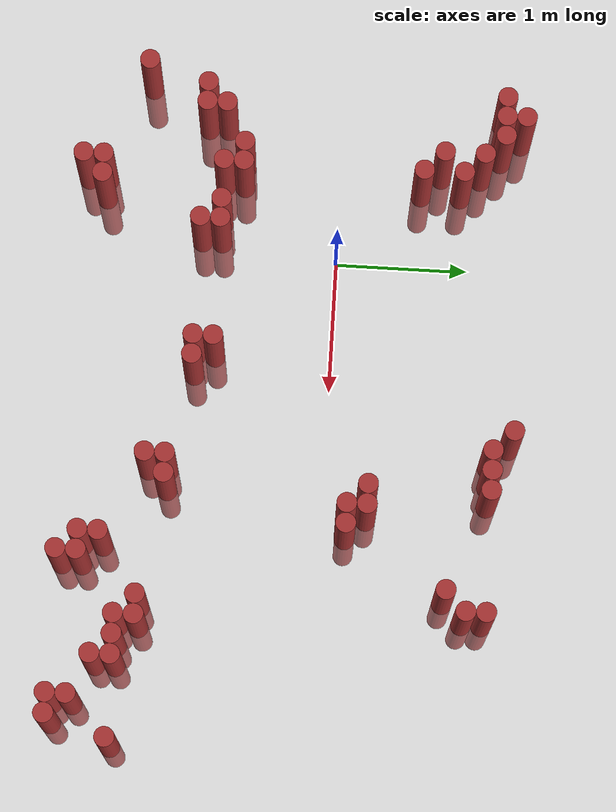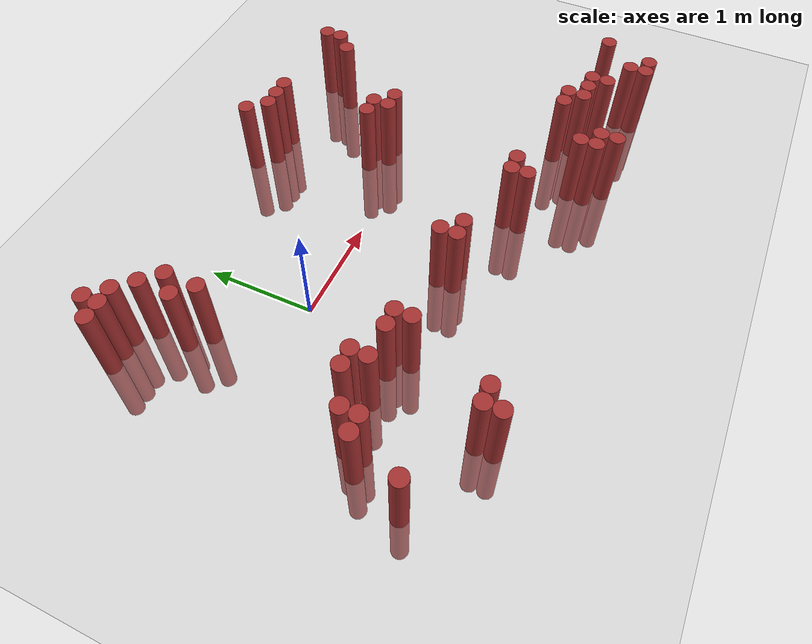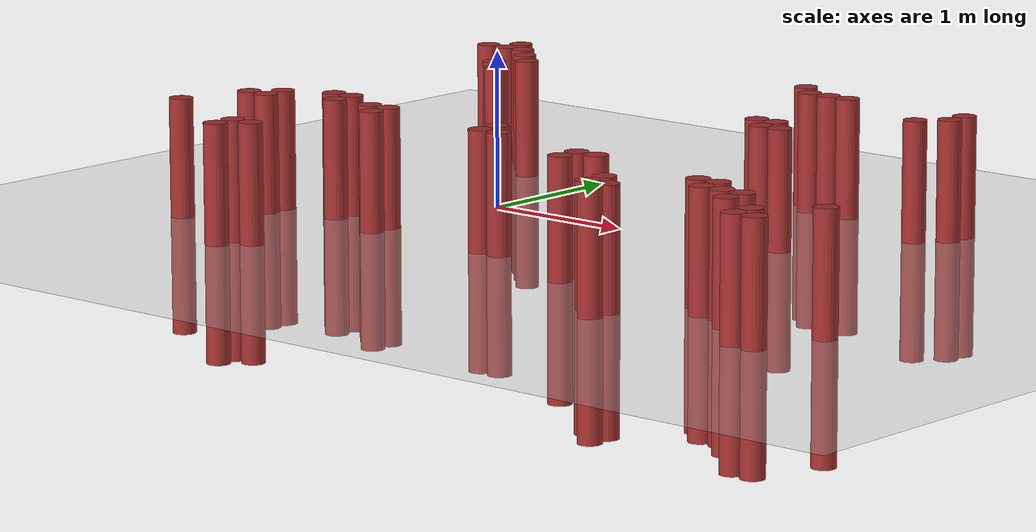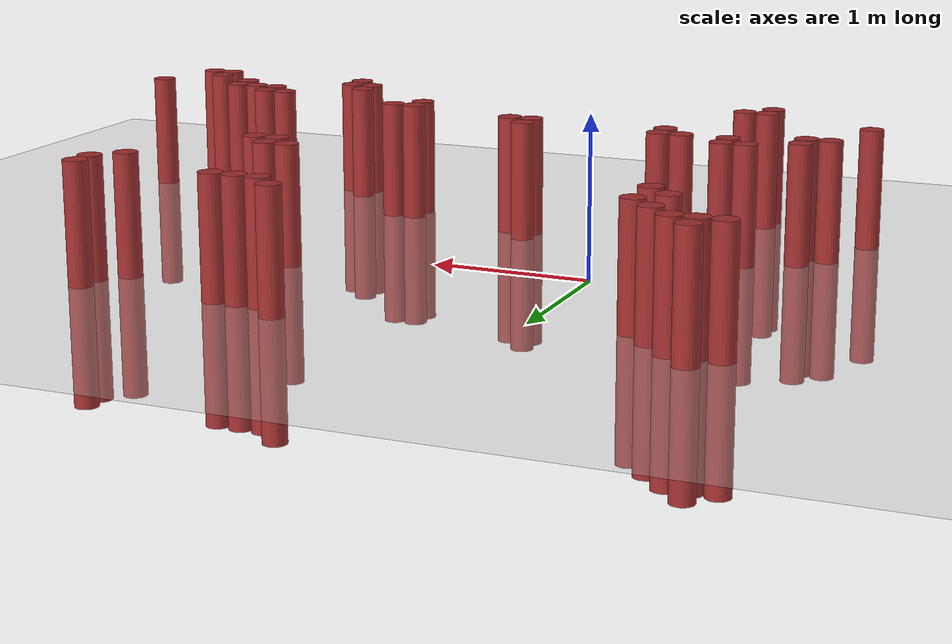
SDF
<sdf version="1.6">
 <world name="default">
  <model name="ground_plane">
   <static>1</static>
   <link name="link">
    <collision name="collision">
     <geometry><plane><normal>0 0 1</normal><size>100 100</size></plane></geometry>
     <surface><friction><ode><mu>100</mu><mu2>50</mu2></ode></friction></surface>
    </collision>
    <visual name="visual">
     <cast_shadows>0</cast_shadows>
     <geometry><plane><normal>0 0 1</normal><size>100 100</size></plane></geometry>
     <material>
      <script><uri>file://media/materials/scripts/gazebo.material</uri><name>Gazebo/Grey</name></script>
     </material>
    </visual>
   </link>
  </model>
  <model name="unit_cylinder_293">
   <static>1</static>
   <pose>-1.325000 -1.475000 0.000000 0.000000 0.000000 0.000000</pose>
   <link name="link">
    <inertial>
     <mass>1</mass>
     <inertia><ixx>0.145833</ixx><ixy>0</ixy><ixz>0</ixz><iyy>0.145833</iyy><iyz>0</iyz><izz>0.125</izz></inertia>
    </inertial>
    <collision name="collision">
     <geometry><cylinder><radius>0.075000</radius><length>1.5</length></cylinder></geometry>
    </collision>
    <visual name="visual">
     <geometry><cylinder><radius>0.075000</radius><length>1.5</length></cylinder></geometry>
     <material>
      <ambient>0.648000 0.192000 0.192000 1</ambient>
      <diffuse>0.648000 0.192000 0.192000 1</diffuse>
     </material>
     <material>
      <script><name>Gazebo/Grey</name><uri>file://media/materials/scripts/gazebo.material</uri></script>
     </material>
    </visual>
   </link>
  </model>
  <model name="unit_cylinder_295">
   <static>1</static>
   <pose>-1.175000 -1.025000 0.000000 0.000000 0.000000 0.000000</pose>
   <link name="link">
    <inertial>
     <mass>1</mass>
     <inertia><ixx>0.145833</ixx><ixy>0</ixy><ixz>0</ixz><iyy>0.145833</iyy><iyz>0</iyz><izz>0.125</izz></inertia>
    </inertial>
    <collision name="collision">
     <geometry><cylinder><radius>0.075000</radius><length>1.5</length></cylinder></geometry>
    </collision>
    <visual name="visual">
     <geometry><cylinder><radius>0.075000</radius><length>1.5</length></cylinder></geometry>
     <material>
      <ambient>0.648000 0.192000 0.192000 1</ambient>
      <diffuse>0.648000 0.192000 0.192000 1</diffuse>
     </material>
     <material>
      <script><name>Gazebo/Grey</name><uri>file://media/materials/scripts/gazebo.material</uri></script>
     </material>
    </visual>
   </link>
  </model>
  <model name="unit_cylinder_296">
   <static>1</static>
   <pose>-1.175000 1.225000 0.000000 0.000000 0.000000 0.000000</pose>
   <link name="link">
    <inertial>
     <mass>1</mass>
     <inertia><ixx>0.145833</ixx><ixy>0</ixy><ixz>0</ixz><iyy>0.145833</iyy><iyz>0</iyz><izz>0.125</izz></inertia>
    </inertial>
    <collision name="collision">
     <geometry><cylinder><radius>0.075000</radius><length>1.5</length></cylinder></geometry>
    </collision>
    <visual name="visual">
     <geometry><cylinder><radius>0.075000</radius><length>1.5</length></cylinder></geometry>
     <material>
      <ambient>0.648000 0.192000 0.192000 1</ambient>
      <diffuse>0.648000 0.192000 0.192000 1</diffuse>
     </material>
     <material>
      <script><name>Gazebo/Grey</name><uri>file://media/materials/scripts/gazebo.material</uri></script>
     </material>
    </visual>
   </link>
  </model>
  <model name="unit_cylinder_297">
   <static>1</static>
   <pose>-1.025000 -1.025000 0.000000 0.000000 0.000000 0.000000</pose>
   <link name="link">
    <inertial>
     <mass>1</mass>
     <inertia><ixx>0.145833</ixx><ixy>0</ixy><ixz>0</ixz><iyy>0.145833</iyy><iyz>0</iyz><izz>0.125</izz></inertia>
    </inertial>
    <collision name="collision">
     <geometry><cylinder><radius>0.075000</radius><length>1.5</length></cylinder></geometry>
    </collision>
    <visual name="visual">
     <geometry><cylinder><radius>0.075000</radius><length>1.5</length></cylinder></geometry>
     <material>
      <ambient>0.648000 0.192000 0.192000 1</ambient>
      <diffuse>0.648000 0.192000 0.192000 1</diffuse>
     </material>
     <material>
      <script><name>Gazebo/Grey</name><uri>file://media/materials/scripts/gazebo.material</uri></script>
     </material>
    </visual>
   </link>
  </model>
  <model name="unit_cylinder_298">
   <static>1</static>
   <pose>-1.025000 -0.875000 0.000000 0.000000 0.000000 0.000000</pose>
   <link name="link">
    <inertial>
     <mass>1</mass>
     <inertia><ixx>0.145833</ixx><ixy>0</ixy><ixz>0</ixz><iyy>0.145833</iyy><iyz>0</iyz><izz>0.125</izz></inertia>
    </inertial>
    <collision name="collision">
     <geometry><cylinder><radius>0.075000</radius><length>1.5</length></cylinder></geometry>
    </collision>
    <visual name="visual">
     <geometry><cylinder><radius>0.075000</radius><length>1.5</length></cylinder></geometry>
     <material>
      <ambient>0.648000 0.192000 0.192000 1</ambient>
      <diffuse>0.648000 0.192000 0.192000 1</diffuse>
     </material>
     <material>
      <script><name>Gazebo/Grey</name><uri>file://media/materials/scripts/gazebo.material</uri></script>
     </material>
    </visual>
   </link>
  </model>
  <model name="unit_cylinder_299">
   <static>1</static>
   <pose>-1.025000 1.225000 0.000000 0.000000 0.000000 0.000000</pose>
   <link name="link">
    <inertial>
     <mass>1</mass>
     <inertia><ixx>0.145833</ixx><ixy>0</ixy><ixz>0</ixz><iyy>0.145833</iyy><iyz>0</iyz><izz>0.125</izz></inertia>
    </inertial>
    <collision name="collision">
     <geometry><cylinder><radius>0.075000</radius><length>1.5</length></cylinder></geometry>
    </collision>
    <visual name="visual">
     <geometry><cylinder><radius>0.075000</radius><length>1.5</length></cylinder></geometry>
     <material>
      <ambient>0.648000 0.192000 0.192000 1</ambient>
      <diffuse>0.648000 0.192000 0.192000 1</diffuse>
     </material>
     <material>
      <script><name>Gazebo/Grey</name><uri>file://media/materials/scripts/gazebo.material</uri></script>
     </material>
    </visual>
   </link>
  </model>
  <model name="unit_cylinder_300">
   <static>1</static>
   <pose>-1.025000 1.375000 0.000000 0.000000 0.000000 0.000000</pose>
   <link name="link">
    <inertial>
     <mass>1</mass>
     <inertia><ixx>0.145833</ixx><ixy>0</ixy><ixz>0</ixz><iyy>0.145833</iyy><iyz>0</iyz><izz>0.125</izz></inertia>
    </inertial>
    <collision name="collision">
     <geometry><cylinder><radius>0.075000</radius><length>1.5</length></cylinder></geometry>
    </collision>
    <visual name="visual">
     <geometry><cylinder><radius>0.075000</radius><length>1.5</length></cylinder></geometry>
     <material>
      <ambient>0.648000 0.192000 0.192000 1</ambient>
      <diffuse>0.648000 0.192000 0.192000 1</diffuse>
     </material>
     <material>
      <script><name>Gazebo/Grey</name><uri>file://media/materials/scripts/gazebo.material</uri></script>
     </material>
    </visual>
   </link>
  </model>
  <model name="unit_cylinder_301">
   <static>1</static>
   <pose>-0.875000 1.225000 0.000000 0.000000 0.000000 0.000000</pose>
   <link name="link">
    <inertial>
     <mass>1</mass>
     <inertia><ixx>0.145833</ixx><ixy>0</ixy><ixz>0</ixz><iyy>0.145833</iyy><iyz>0</iyz><izz>0.125</izz></inertia>
    </inertial>
    <collision name="collision">
     <geometry><cylinder><radius>0.075000</radius><length>1.5</length></cylinder></geometry>
    </collision>
    <visual name="visual">
     <geometry><cylinder><radius>0.075000</radius><length>1.5</length></cylinder></geometry>
     <material>
      <ambient>0.648000 0.192000 0.192000 1</ambient>
      <diffuse>0.648000 0.192000 0.192000 1</diffuse>
     </material>
     <material>
      <script><name>Gazebo/Grey</name><uri>file://media/materials/scripts/gazebo.material</uri></script>
     </material>
    </visual>
   </link>
  </model>
  <model name="unit_cylinder_303">
   <static>1</static>
   <pose>-0.725000 -0.725000 0.000000 0.000000 0.000000 0.000000</pose>
   <link name="link">
    <inertial>
     <mass>1</mass>
     <inertia><ixx>0.145833</ixx><ixy>0</ixy><ixz>0</ixz><iyy>0.145833</iyy><iyz>0</iyz><izz>0.125</izz></inertia>
    </inertial>
    <collision name="collision">
     <geometry><cylinder><radius>0.075000</radius><length>1.5</length></cylinder></geometry>
    </collision>
    <visual name="visual">
     <geometry><cylinder><radius>0.075000</radius><length>1.5</length></cylinder></geometry>
     <material>
      <ambient>0.648000 0.192000 0.192000 1</ambient>
      <diffuse>0.648000 0.192000 0.192000 1</diffuse>
     </material>
     <material>
      <script><name>Gazebo/Grey</name><uri>file://media/materials/scripts/gazebo.material</uri></script>
     </material>
    </visual>
   </link>
  </model>
  <model name="unit_cylinder_304">
   <static>1</static>
   <pose>-0.725000 0.775000 0.000000 0.000000 0.000000 0.000000</pose>
   <link name="link">
    <inertial>
     <mass>1</mass>
     <inertia><ixx>0.145833</ixx><ixy>0</ixy><ixz>0</ixz><iyy>0.145833</iyy><iyz>0</iyz><izz>0.125</izz></inertia>
    </inertial>
    <collision name="collision">
     <geometry><cylinder><radius>0.075000</radius><length>1.5</length></cylinder></geometry>
    </collision>
    <visual name="visual">
     <geometry><cylinder><radius>0.075000</radius><length>1.5</length></cylinder></geometry>
     <material>
      <ambient>0.648000 0.192000 0.192000 1</ambient>
      <diffuse>0.648000 0.192000 0.192000 1</diffuse>
     </material>
     <material>
      <script><name>Gazebo/Grey</name><uri>file://media/materials/scripts/gazebo.material</uri></script>
     </material>
    </visual>
   </link>
  </model>
  <model name="unit_cylinder_305">
   <static>1</static>
   <pose>-0.725000 1.075000 0.000000 0.000000 0.000000 0.000000</pose>
   <link name="link">
    <inertial>
     <mass>1</mass>
     <inertia><ixx>0.145833</ixx><ixy>0</ixy><ixz>0</ixz><iyy>0.145833</iyy><iyz>0</iyz><izz>0.125</izz></inertia>
    </inertial>
    <collision name="collision">
     <geometry><cylinder><radius>0.075000</radius><length>1.5</length></cylinder></geometry>
    </collision>
    <visual name="visual">
     <geometry><cylinder><radius>0.075000</radius><length>1.5</length></cylinder></geometry>
     <material>
      <ambient>0.648000 0.192000 0.192000 1</ambient>
      <diffuse>0.648000 0.192000 0.192000 1</diffuse>
     </material>
     <material>
      <script><name>Gazebo/Grey</name><uri>file://media/materials/scripts/gazebo.material</uri></script>
     </material>
    </visual>
   </link>
  </model>
  <model name="unit_cylinder_309">
   <static>1</static>
   <pose>-0.575000 -1.925000 0.000000 0.000000 0.000000 0.000000</pose>
   <link name="link">
    <inertial>
     <mass>1</mass>
     <inertia><ixx>0.145833</ixx><ixy>0</ixy><ixz>0</ixz><iyy>0.145833</iyy><iyz>0</iyz><izz>0.125</izz></inertia>
    </inertial>
    <collision name="collision">
     <geometry><cylinder><radius>0.075000</radius><length>1.5</length></cylinder></geometry>
    </collision>
    <visual name="visual">
     <geometry><cylinder><radius>0.075000</radius><length>1.5</length></cylinder></geometry>
     <material>
      <ambient>0.648000 0.192000 0.192000 1</ambient>
      <diffuse>0.648000 0.192000 0.192000 1</diffuse>
     </material>
     <material>
      <script><name>Gazebo/Grey</name><uri>file://media/materials/scripts/gazebo.material</uri></script>
     </material>
    </visual>
   </link>
  </model>
  <model name="unit_cylinder_310">
   <static>1</static>
   <pose>-0.575000 -1.775000 0.000000 0.000000 0.000000 0.000000</pose>
   <link name="link">
    <inertial>
     <mass>1</mass>
     <inertia><ixx>0.145833</ixx><ixy>0</ixy><ixz>0</ixz><iyy>0.145833</iyy><iyz>0</iyz><izz>0.125</izz></inertia>
    </inertial>
    <collision name="collision">
     <geometry><cylinder><radius>0.075000</radius><length>1.5</length></cylinder></geometry>
    </collision>
    <visual name="visual">
     <geometry><cylinder><radius>0.075000</radius><length>1.5</length></cylinder></geometry>
     <material>
      <ambient>0.648000 0.192000 0.192000 1</ambient>
      <diffuse>0.648000 0.192000 0.192000 1</diffuse>
     </material>
     <material>
      <script><name>Gazebo/Grey</name><uri>file://media/materials/scripts/gazebo.material</uri></script>
     </material>
    </visual>
   </link>
  </model>
  <model name="unit_cylinder_311">
   <static>1</static>
   <pose>-0.575000 -0.875000 0.000000 0.000000 0.000000 0.000000</pose>
   <link name="link">
    <inertial>
     <mass>1</mass>
     <inertia><ixx>0.145833</ixx><ixy>0</ixy><ixz>0</ixz><iyy>0.145833</iyy><iyz>0</iyz><izz>0.125</izz></inertia>
    </inertial>
    <collision name="collision">
     <geometry><cylinder><radius>0.075000</radius><length>1.5</length></cylinder></geometry>
    </collision>
    <visual name="visual">
     <geometry><cylinder><radius>0.075000</radius><length>1.5</length></cylinder></geometry>
     <material>
      <ambient>0.648000 0.192000 0.192000 1</ambient>
      <diffuse>0.648000 0.192000 0.192000 1</diffuse>
     </material>
     <material>
      <script><name>Gazebo/Grey</name><uri>file://media/materials/scripts/gazebo.material</uri></script>
     </material>
    </visual>
   </link>
  </model>
  <model name="unit_cylinder_312">
   <static>1</static>
   <pose>-0.575000 -0.725000 0.000000 0.000000 0.000000 0.000000</pose>
   <link name="link">
    <inertial>
     <mass>1</mass>
     <inertia><ixx>0.145833</ixx><ixy>0</ixy><ixz>0</ixz><iyy>0.145833</iyy><iyz>0</iyz><izz>0.125</izz></inertia>
    </inertial>
    <collision name="collision">
     <geometry><cylinder><radius>0.075000</radius><length>1.5</length></cylinder></geometry>
    </collision>
    <visual name="visual">
     <geometry><cylinder><radius>0.075000</radius><length>1.5</length></cylinder></geometry>
     <material>
      <ambient>0.648000 0.192000 0.192000 1</ambient>
      <diffuse>0.648000 0.192000 0.192000 1</diffuse>
     </material>
     <material>
      <script><name>Gazebo/Grey</name><uri>file://media/materials/scripts/gazebo.material</uri></script>
     </material>
    </visual>
   </link>
  </model>
  <model name="unit_cylinder_313">
   <static>1</static>
   <pose>-0.575000 0.625000 0.000000 0.000000 0.000000 0.000000</pose>
   <link name="link">
    <inertial>
     <mass>1</mass>
     <inertia><ixx>0.145833</ixx><ixy>0</ixy><ixz>0</ixz><iyy>0.145833</iyy><iyz>0</iyz><izz>0.125</izz></inertia>
    </inertial>
    <collision name="collision">
     <geometry><cylinder><radius>0.075000</radius><length>1.5</length></cylinder></geometry>
    </collision>
    <visual name="visual">
     <geometry><cylinder><radius>0.075000</radius><length>1.5</length></cylinder></geometry>
     <material>
      <ambient>0.648000 0.192000 0.192000 1</ambient>
      <diffuse>0.648000 0.192000 0.192000 1</diffuse>
     </material>
     <material>
      <script><name>Gazebo/Grey</name><uri>file://media/materials/scripts/gazebo.material</uri></script>
     </material>
    </visual>
   </link>
  </model>
  <model name="unit_cylinder_314">
   <static>1</static>
   <pose>-0.575000 0.925000 0.000000 0.000000 0.000000 0.000000</pose>
   <link name="link">
    <inertial>
     <mass>1</mass>
     <inertia><ixx>0.145833</ixx><ixy>0</ixy><ixz>0</ixz><iyy>0.145833</iyy><iyz>0</iyz><izz>0.125</izz></inertia>
    </inertial>
    <collision name="collision">
     <geometry><cylinder><radius>0.075000</radius><length>1.5</length></cylinder></geometry>
    </collision>
    <visual name="visual">
     <geometry><cylinder><radius>0.075000</radius><length>1.5</length></cylinder></geometry>
     <material>
      <ambient>0.648000 0.192000 0.192000 1</ambient>
      <diffuse>0.648000 0.192000 0.192000 1</diffuse>
     </material>
     <material>
      <script><name>Gazebo/Grey</name><uri>file://media/materials/scripts/gazebo.material</uri></script>
     </material>
    </visual>
   </link>
  </model>
  <model name="unit_cylinder_325">
   <static>1</static>
   <pose>-0.425000 -1.775000 0.000000 0.000000 0.000000 0.000000</pose>
   <link name="link">
    <inertial>
     <mass>1</mass>
     <inertia><ixx>0.145833</ixx><ixy>0</ixy><ixz>0</ixz><iyy>0.145833</iyy><iyz>0</iyz><izz>0.125</izz></inertia>
    </inertial>
    <collision name="collision">
     <geometry><cylinder><radius>0.075000</radius><length>1.5</length></cylinder></geometry>
    </collision>
    <visual name="visual">
     <geometry><cylinder><radius>0.075000</radius><length>1.5</length></cylinder></geometry>
     <material>
      <ambient>0.648000 0.192000 0.192000 1</ambient>
      <diffuse>0.648000 0.192000 0.192000 1</diffuse>
     </material>
     <material>
      <script><name>Gazebo/Grey</name><uri>file://media/materials/scripts/gazebo.material</uri></script>
     </material>
    </visual>
   </link>
  </model>
  <model name="unit_cylinder_335">
   <static>1</static>
   <pose>-0.275000 -0.875000 0.000000 0.000000 0.000000 0.000000</pose>
   <link name="link">
    <inertial>
     <mass>1</mass>
     <inertia><ixx>0.145833</ixx><ixy>0</ixy><ixz>0</ixz><iyy>0.145833</iyy><iyz>0</iyz><izz>0.125</izz></inertia>
    </inertial>
    <collision name="collision">
     <geometry><cylinder><radius>0.075000</radius><length>1.5</length></cylinder></geometry>
    </collision>
    <visual name="visual">
     <geometry><cylinder><radius>0.075000</radius><length>1.5</length></cylinder></geometry>
     <material>
      <ambient>0.648000 0.192000 0.192000 1</ambient>
      <diffuse>0.648000 0.192000 0.192000 1</diffuse>
     </material>
     <material>
      <script><name>Gazebo/Grey</name><uri>file://media/materials/scripts/gazebo.material</uri></script>
     </material>
    </visual>
   </link>
  </model>
  <model name="unit_cylinder_338">
   <static>1</static>
   <pose>-0.125000 -1.025000 0.000000 0.000000 0.000000 0.000000</pose>
   <link name="link">
    <inertial>
     <mass>1</mass>
     <inertia><ixx>0.145833</ixx><ixy>0</ixy><ixz>0</ixz><iyy>0.145833</iyy><iyz>0</iyz><izz>0.125</izz></inertia>
    </inertial>
    <collision name="collision">
     <geometry><cylinder><radius>0.075000</radius><length>1.5</length></cylinder></geometry>
    </collision>
    <visual name="visual">
     <geometry><cylinder><radius>0.075000</radius><length>1.5</length></cylinder></geometry>
     <material>
      <ambient>0.648000 0.192000 0.192000 1</ambient>
      <diffuse>0.648000 0.192000 0.192000 1</diffuse>
     </material>
     <material>
      <script><name>Gazebo/Grey</name><uri>file://media/materials/scripts/gazebo.material</uri></script>
     </material>
    </visual>
   </link>
  </model>
  <model name="unit_cylinder_339">
   <static>1</static>
   <pose>-0.125000 -0.875000 0.000000 0.000000 0.000000 0.000000</pose>
   <link name="link">
    <inertial>
     <mass>1</mass>
     <inertia><ixx>0.145833</ixx><ixy>0</ixy><ixz>0</ixz><iyy>0.145833</iyy><iyz>0</iyz><izz>0.125</izz></inertia>
    </inertial>
    <collision name="collision">
     <geometry><cylinder><radius>0.075000</radius><length>1.5</length></cylinder></geometry>
    </collision>
    <visual name="visual">
     <geometry><cylinder><radius>0.075000</radius><length>1.5</length></cylinder></geometry>
     <material>
      <ambient>0.648000 0.192000 0.192000 1</ambient>
      <diffuse>0.648000 0.192000 0.192000 1</diffuse>
     </material>
     <material>
      <script><name>Gazebo/Grey</name><uri>file://media/materials/scripts/gazebo.material</uri></script>
     </material>
    </visual>
   </link>
  </model>
  <model name="unit_cylinder_352">
   <static>1</static>
   <pose>0.775000 -1.025000 0.000000 0.000000 0.000000 0.000000</pose>
   <link name="link">
    <inertial>
     <mass>1</mass>
     <inertia><ixx>0.145833</ixx><ixy>0</ixy><ixz>0</ixz><iyy>0.145833</iyy><iyz>0</iyz><izz>0.125</izz></inertia>
    </inertial>
    <collision name="collision">
     <geometry><cylinder><radius>0.075000</radius><length>1.5</length></cylinder></geometry>
    </collision>
    <visual name="visual">
     <geometry><cylinder><radius>0.075000</radius><length>1.5</length></cylinder></geometry>
     <material>
      <ambient>0.648000 0.192000 0.192000 1</ambient>
      <diffuse>0.648000 0.192000 0.192000 1</diffuse>
     </material>
     <material>
      <script><name>Gazebo/Grey</name><uri>file://media/materials/scripts/gazebo.material</uri></script>
     </material>
    </visual>
   </link>
  </model>
  <model name="unit_cylinder_353">
   <static>1</static>
   <pose>0.775000 -0.875000 0.000000 0.000000 0.000000 0.000000</pose>
   <link name="link">
    <inertial>
     <mass>1</mass>
     <inertia><ixx>0.145833</ixx><ixy>0</ixy><ixz>0</ixz><iyy>0.145833</iyy><iyz>0</iyz><izz>0.125</izz></inertia>
    </inertial>
    <collision name="collision">
     <geometry><cylinder><radius>0.075000</radius><length>1.5</length></cylinder></geometry>
    </collision>
    <visual name="visual">
     <geometry><cylinder><radius>0.075000</radius><length>1.5</length></cylinder></geometry>
     <material>
      <ambient>0.648000 0.192000 0.192000 1</ambient>
      <diffuse>0.648000 0.192000 0.192000 1</diffuse>
     </material>
     <material>
      <script><name>Gazebo/Grey</name><uri>file://media/materials/scripts/gazebo.material</uri></script>
     </material>
    </visual>
   </link>
  </model>
  <model name="unit_cylinder_356">
   <static>1</static>
   <pose>0.925000 -1.025000 0.000000 0.000000 0.000000 0.000000</pose>
   <link name="link">
    <inertial>
     <mass>1</mass>
     <inertia><ixx>0.145833</ixx><ixy>0</ixy><ixz>0</ixz><iyy>0.145833</iyy><iyz>0</iyz><izz>0.125</izz></inertia>
    </inertial>
    <collision name="collision">
     <geometry><cylinder><radius>0.075000</radius><length>1.5</length></cylinder></geometry>
    </collision>
    <visual name="visual">
     <geometry><cylinder><radius>0.075000</radius><length>1.5</length></cylinder></geometry>
     <material>
      <ambient>0.648000 0.192000 0.192000 1</ambient>
      <diffuse>0.648000 0.192000 0.192000 1</diffuse>
     </material>
     <material>
      <script><name>Gazebo/Grey</name><uri>file://media/materials/scripts/gazebo.material</uri></script>
     </material>
    </visual>
   </link>
  </model>
  <model name="unit_cylinder_360">
   <static>1</static>
   <pose>1.375000 1.375000 0.000000 0.000000 0.000000 0.000000</pose>
   <link name="link">
    <inertial>
     <mass>1</mass>
     <inertia><ixx>0.145833</ixx><ixy>0</ixy><ixz>0</ixz><iyy>0.145833</iyy><iyz>0</iyz><izz>0.125</izz></inertia>
    </inertial>
    <collision name="collision">
     <geometry><cylinder><radius>0.075000</radius><length>1.5</length></cylinder></geometry>
    </collision>
    <visual name="visual">
     <geometry><cylinder><radius>0.075000</radius><length>1.5</length></cylinder></geometry>
     <material>
      <ambient>0.648000 0.192000 0.192000 1</ambient>
      <diffuse>0.648000 0.192000 0.192000 1</diffuse>
     </material>
     <material>
      <script><name>Gazebo/Grey</name><uri>file://media/materials/scripts/gazebo.material</uri></script>
     </material>
    </visual>
   </link>
  </model>
  <model name="unit_cylinder_365">
   <static>1</static>
   <pose>1.525000 1.225000 0.000000 0.000000 0.000000 0.000000</pose>
   <link name="link">
    <inertial>
     <mass>1</mass>
     <inertia><ixx>0.145833</ixx><ixy>0</ixy><ixz>0</ixz><iyy>0.145833</iyy><iyz>0</iyz><izz>0.125</izz></inertia>
    </inertial>
    <collision name="collision">
     <geometry><cylinder><radius>0.075000</radius><length>1.5</length></cylinder></geometry>
    </collision>
    <visual name="visual">
     <geometry><cylinder><radius>0.075000</radius><length>1.5</length></cylinder></geometry>
     <material>
      <ambient>0.648000 0.192000 0.192000 1</ambient>
      <diffuse>0.648000 0.192000 0.192000 1</diffuse>
     </material>
     <material>
      <script><name>Gazebo/Grey</name><uri>file://media/materials/scripts/gazebo.material</uri></script>
     </material>
    </visual>
   </link>
  </model>
  <model name="unit_cylinder_370">
   <static>1</static>
   <pose>1.675000 -1.325000 0.000000 0.000000 0.000000 0.000000</pose>
   <link name="link">
    <inertial>
     <mass>1</mass>
     <inertia><ixx>0.145833</ixx><ixy>0</ixy><ixz>0</ixz><iyy>0.145833</iyy><iyz>0</iyz><izz>0.125</izz></inertia>
    </inertial>
    <collision name="collision">
     <geometry><cylinder><radius>0.075000</radius><length>1.5</length></cylinder></geometry>
    </collision>
    <visual name="visual">
     <geometry><cylinder><radius>0.075000</radius><length>1.5</length></cylinder></geometry>
     <material>
      <ambient>0.648000 0.192000 0.192000 1</ambient>
      <diffuse>0.648000 0.192000 0.192000 1</diffuse>
     </material>
     <material>
      <script><name>Gazebo/Grey</name><uri>file://media/materials/scripts/gazebo.material</uri></script>
     </material>
    </visual>
   </link>
  </model>
  <model name="unit_cylinder_371">
   <static>1</static>
   <pose>1.675000 -1.175000 0.000000 0.000000 0.000000 0.000000</pose>
   <link name="link">
    <inertial>
     <mass>1</mass>
     <inertia><ixx>0.145833</ixx><ixy>0</ixy><ixz>0</ixz><iyy>0.145833</iyy><iyz>0</iyz><izz>0.125</izz></inertia>
    </inertial>
    <collision name="collision">
     <geometry><cylinder><radius>0.075000</radius><length>1.5</length></cylinder></geometry>
    </collision>
    <visual name="visual">
     <geometry><cylinder><radius>0.075000</radius><length>1.5</length></cylinder></geometry>
     <material>
      <ambient>0.648000 0.192000 0.192000 1</ambient>
      <diffuse>0.648000 0.192000 0.192000 1</diffuse>
     </material>
     <material>
      <script><name>Gazebo/Grey</name><uri>file://media/materials/scripts/gazebo.material</uri></script>
     </material>
    </visual>
   </link>
  </model>
  <model name="unit_cylinder_372">
   <static>1</static>
   <pose>1.675000 1.225000 0.000000 0.000000 0.000000 0.000000</pose>
   <link name="link">
    <inertial>
     <mass>1</mass>
     <inertia><ixx>0.145833</ixx><ixy>0</ixy><ixz>0</ixz><iyy>0.145833</iyy><iyz>0</iyz><izz>0.125</izz></inertia>
    </inertial>
    <collision name="collision">
     <geometry><cylinder><radius>0.075000</radius><length>1.5</length></cylinder></geometry>
    </collision>
    <visual name="visual">
     <geometry><cylinder><radius>0.075000</radius><length>1.5</length></cylinder></geometry>
     <material>
      <ambient>0.648000 0.192000 0.192000 1</ambient>
      <diffuse>0.648000 0.192000 0.192000 1</diffuse>
     </material>
     <material>
      <script><name>Gazebo/Grey</name><uri>file://media/materials/scripts/gazebo.material</uri></script>
     </material>
    </visual>
   </link>
  </model>
  <model name="unit_cylinder_381">
   <static>1</static>
   <pose>1.825000 -1.175000 0.000000 0.000000 0.000000 0.000000</pose>
   <link name="link">
    <inertial>
     <mass>1</mass>
     <inertia><ixx>0.145833</ixx><ixy>0</ixy><ixz>0</ixz><iyy>0.145833</iyy><iyz>0</iyz><izz>0.125</izz></inertia>
    </inertial>
    <collision name="collision">
     <geometry><cylinder><radius>0.075000</radius><length>1.5</length></cylinder></geometry>
    </collision>
    <visual name="visual">
     <geometry><cylinder><radius>0.075000</radius><length>1.5</length></cylinder></geometry>
     <material>
      <ambient>0.648000 0.192000 0.192000 1</ambient>
      <diffuse>0.648000 0.192000 0.192000 1</diffuse>
     </material>
     <material>
      <script><name>Gazebo/Grey</name><uri>file://media/materials/scripts/gazebo.material</uri></script>
     </material>
    </visual>
   </link>
  </model>
  <model name="unit_cylinder_382">
   <static>1</static>
   <pose>1.825000 0.325000 0.000000 0.000000 0.000000 0.000000</pose>
   <link name="link">
    <inertial>
     <mass>1</mass>
     <inertia><ixx>0.145833</ixx><ixy>0</ixy><ixz>0</ixz><iyy>0.145833</iyy><iyz>0</iyz><izz>0.125</izz></inertia>
    </inertial>
    <collision name="collision">
     <geometry><cylinder><radius>0.075000</radius><length>1.5</length></cylinder></geometry>
    </collision>
    <visual name="visual">
     <geometry><cylinder><radius>0.075000</radius><length>1.5</length></cylinder></geometry>
     <material>
      <ambient>0.648000 0.192000 0.192000 1</ambient>
      <diffuse>0.648000 0.192000 0.192000 1</diffuse>
     </material>
     <material>
      <script><name>Gazebo/Grey</name><uri>file://media/materials/scripts/gazebo.material</uri></script>
     </material>
    </visual>
   </link>
  </model>
  <model name="unit_cylinder_383">
   <static>1</static>
   <pose>1.825000 1.225000 0.000000 0.000000 0.000000 0.000000</pose>
   <link name="link">
    <inertial>
     <mass>1</mass>
     <inertia><ixx>0.145833</ixx><ixy>0</ixy><ixz>0</ixz><iyy>0.145833</iyy><iyz>0</iyz><izz>0.125</izz></inertia>
    </inertial>
    <collision name="collision">
     <geometry><cylinder><radius>0.075000</radius><length>1.5</length></cylinder></geometry>
    </collision>
    <visual name="visual">
     <geometry><cylinder><radius>0.075000</radius><length>1.5</length></cylinder></geometry>
     <material>
      <ambient>0.648000 0.192000 0.192000 1</ambient>
      <diffuse>0.648000 0.192000 0.192000 1</diffuse>
     </material>
     <material>
      <script><name>Gazebo/Grey</name><uri>file://media/materials/scripts/gazebo.material</uri></script>
     </material>
    </visual>
   </link>
  </model>
  <model name="unit_cylinder_393">
   <static>1</static>
   <pose>1.975000 0.175000 0.000000 0.000000 0.000000 0.000000</pose>
   <link name="link">
    <inertial>
     <mass>1</mass>
     <inertia><ixx>0.145833</ixx><ixy>0</ixy><ixz>0</ixz><iyy>0.145833</iyy><iyz>0</iyz><izz>0.125</izz></inertia>
    </inertial>
    <collision name="collision">
     <geometry><cylinder><radius>0.075000</radius><length>1.5</length></cylinder></geometry>
    </collision>
    <visual name="visual">
     <geometry><cylinder><radius>0.075000</radius><length>1.5</length></cylinder></geometry>
     <material>
      <ambient>0.648000 0.192000 0.192000 1</ambient>
      <diffuse>0.648000 0.192000 0.192000 1</diffuse>
     </material>
     <material>
      <script><name>Gazebo/Grey</name><uri>file://media/materials/scripts/gazebo.material</uri></script>
     </material>
    </visual>
   </link>
  </model>
  <model name="unit_cylinder_394">
   <static>1</static>
   <pose>1.975000 0.325000 0.000000 0.000000 0.000000 0.000000</pose>
   <link name="link">
    <inertial>
     <mass>1</mass>
     <inertia><ixx>0.145833</ixx><ixy>0</ixy><ixz>0</ixz><iyy>0.145833</iyy><iyz>0</iyz><izz>0.125</izz></inertia>
    </inertial>
    <collision name="collision">
     <geometry><cylinder><radius>0.075000</radius><length>1.5</length></cylinder></geometry>
    </collision>
    <visual name="visual">
     <geometry><cylinder><radius>0.075000</radius><length>1.5</length></cylinder></geometry>
     <material>
      <ambient>0.648000 0.192000 0.192000 1</ambient>
      <diffuse>0.648000 0.192000 0.192000 1</diffuse>
     </material>
     <material>
      <script><name>Gazebo/Grey</name><uri>file://media/materials/scripts/gazebo.material</uri></script>
     </material>
    </visual>
   </link>
  </model>
  <model name="unit_cylinder_405">
   <static>1</static>
   <pose>2.125000 0.175000 0.000000 0.000000 0.000000 0.000000</pose>
   <link name="link">
    <inertial>
     <mass>1</mass>
     <inertia><ixx>0.145833</ixx><ixy>0</ixy><ixz>0</ixz><iyy>0.145833</iyy><iyz>0</iyz><izz>0.125</izz></inertia>
    </inertial>
    <collision name="collision">
     <geometry><cylinder><radius>0.075000</radius><length>1.5</length></cylinder></geometry>
    </collision>
    <visual name="visual">
     <geometry><cylinder><radius>0.075000</radius><length>1.5</length></cylinder></geometry>
     <material>
      <ambient>0.648000 0.192000 0.192000 1</ambient>
      <diffuse>0.648000 0.192000 0.192000 1</diffuse>
     </material>
     <material>
      <script><name>Gazebo/Grey</name><uri>file://media/materials/scripts/gazebo.material</uri></script>
     </material>
    </visual>
   </link>
  </model>
  <model name="unit_cylinder_414">
   <static>1</static>
   <pose>2.275000 -1.775000 0.000000 0.000000 0.000000 0.000000</pose>
   <link name="link">
    <inertial>
     <mass>1</mass>
     <inertia><ixx>0.145833</ixx><ixy>0</ixy><ixz>0</ixz><iyy>0.145833</iyy><iyz>0</iyz><izz>0.125</izz></inertia>
    </inertial>
    <collision name="collision">
     <geometry><cylinder><radius>0.075000</radius><length>1.5</length></cylinder></geometry>
    </collision>
    <visual name="visual">
     <geometry><cylinder><radius>0.075000</radius><length>1.5</length></cylinder></geometry>
     <material>
      <ambient>0.648000 0.192000 0.192000 1</ambient>
      <diffuse>0.648000 0.192000 0.192000 1</diffuse>
     </material>
     <material>
      <script><name>Gazebo/Grey</name><uri>file://media/materials/scripts/gazebo.material</uri></script>
     </material>
    </visual>
   </link>
  </model>
  <model name="unit_cylinder_415">
   <static>1</static>
   <pose>2.275000 -1.625000 0.000000 0.000000 0.000000 0.000000</pose>
   <link name="link">
    <inertial>
     <mass>1</mass>
     <inertia><ixx>0.145833</ixx><ixy>0</ixy><ixz>0</ixz><iyy>0.145833</iyy><iyz>0</iyz><izz>0.125</izz></inertia>
    </inertial>
    <collision name="collision">
     <geometry><cylinder><radius>0.075000</radius><length>1.5</length></cylinder></geometry>
    </collision>
    <visual name="visual">
     <geometry><cylinder><radius>0.075000</radius><length>1.5</length></cylinder></geometry>
     <material>
      <ambient>0.648000 0.192000 0.192000 1</ambient>
      <diffuse>0.648000 0.192000 0.192000 1</diffuse>
     </material>
     <material>
      <script><name>Gazebo/Grey</name><uri>file://media/materials/scripts/gazebo.material</uri></script>
     </material>
    </visual>
   </link>
  </model>
  <model name="unit_cylinder_419">
   <static>1</static>
   <pose>2.425000 -1.925000 0.000000 0.000000 0.000000 0.000000</pose>
   <link name="link">
    <inertial>
     <mass>1</mass>
     <inertia><ixx>0.145833</ixx><ixy>0</ixy><ixz>0</ixz><iyy>0.145833</iyy><iyz>0</iyz><izz>0.125</izz></inertia>
    </inertial>
    <collision name="collision">
     <geometry><cylinder><radius>0.075000</radius><length>1.5</length></cylinder></geometry>
    </collision>
    <visual name="visual">
     <geometry><cylinder><radius>0.075000</radius><length>1.5</length></cylinder></geometry>
     <material>
      <ambient>0.648000 0.192000 0.192000 1</ambient>
      <diffuse>0.648000 0.192000 0.192000 1</diffuse>
     </material>
     <material>
      <script><name>Gazebo/Grey</name><uri>file://media/materials/scripts/gazebo.material</uri></script>
     </material>
    </visual>
   </link>
  </model>
  <model name="unit_cylinder_420">
   <static>1</static>
   <pose>2.425000 -1.775000 0.000000 0.000000 0.000000 0.000000</pose>
   <link name="link">
    <inertial>
     <mass>1</mass>
     <inertia><ixx>0.145833</ixx><ixy>0</ixy><ixz>0</ixz><iyy>0.145833</iyy><iyz>0</iyz><izz>0.125</izz></inertia>
    </inertial>
    <collision name="collision">
     <geometry><cylinder><radius>0.075000</radius><length>1.5</length></cylinder></geometry>
    </collision>
    <visual name="visual">
     <geometry><cylinder><radius>0.075000</radius><length>1.5</length></cylinder></geometry>
     <material>
      <ambient>0.648000 0.192000 0.192000 1</ambient>
      <diffuse>0.648000 0.192000 0.192000 1</diffuse>
     </material>
     <material>
      <script><name>Gazebo/Grey</name><uri>file://media/materials/scripts/gazebo.material</uri></script>
     </material>
    </visual>
   </link>
  </model>
  <model name="unit_cylinder_422">
   <static>1</static>
   <pose>2.575000 0.925000 0.000000 0.000000 0.000000 0.000000</pose>
   <link name="link">
    <inertial>
     <mass>1</mass>
     <inertia><ixx>0.145833</ixx><ixy>0</ixy><ixz>0</ixz><iyy>0.145833</iyy><iyz>0</iyz><izz>0.125</izz></inertia>
    </inertial>
    <collision name="collision">
     <geometry><cylinder><radius>0.075000</radius><length>1.5</length></cylinder></geometry>
    </collision>
    <visual name="visual">
     <geometry><cylinder><radius>0.075000</radius><length>1.5</length></cylinder></geometry>
     <material>
      <ambient>0.648000 0.192000 0.192000 1</ambient>
      <diffuse>0.648000 0.192000 0.192000 1</diffuse>
     </material>
     <material>
      <script><name>Gazebo/Grey</name><uri>file://media/materials/scripts/gazebo.material</uri></script>
     </material>
    </visual>
   </link>
  </model>
  <model name="unit_cylinder_427">
   <static>1</static>
   <pose>2.725000 -1.325000 0.000000 0.000000 0.000000 0.000000</pose>
   <link name="link">
    <inertial>
     <mass>1</mass>
     <inertia><ixx>0.145833</ixx><ixy>0</ixy><ixz>0</ixz><iyy>0.145833</iyy><iyz>0</iyz><izz>0.125</izz></inertia>
    </inertial>
    <collision name="collision">
     <geometry><cylinder><radius>0.075000</radius><length>1.5</length></cylinder></geometry>
    </collision>
    <visual name="visual">
     <geometry><cylinder><radius>0.075000</radius><length>1.5</length></cylinder></geometry>
     <material>
      <ambient>0.648000 0.192000 0.192000 1</ambient>
      <diffuse>0.648000 0.192000 0.192000 1</diffuse>
     </material>
     <material>
      <script><name>Gazebo/Grey</name><uri>file://media/materials/scripts/gazebo.material</uri></script>
     </material>
    </visual>
   </link>
  </model>
  <model name="unit_cylinder_428">
   <static>1</static>
   <pose>2.725000 1.075000 0.000000 0.000000 0.000000 0.000000</pose>
   <link name="link">
    <inertial>
     <mass>1</mass>
     <inertia><ixx>0.145833</ixx><ixy>0</ixy><ixz>0</ixz><iyy>0.145833</iyy><iyz>0</iyz><izz>0.125</izz></inertia>
    </inertial>
    <collision name="collision">
     <geometry><cylinder><radius>0.075000</radius><length>1.5</length></cylinder></geometry>
    </collision>
    <visual name="visual">
     <geometry><cylinder><radius>0.075000</radius><length>1.5</length></cylinder></geometry>
     <material>
      <ambient>0.648000 0.192000 0.192000 1</ambient>
      <diffuse>0.648000 0.192000 0.192000 1</diffuse>
     </material>
     <material>
      <script><name>Gazebo/Grey</name><uri>file://media/materials/scripts/gazebo.material</uri></script>
     </material>
    </visual>
   </link>
  </model>
  <model name="unit_cylinder_429">
   <static>1</static>
   <pose>2.725000 1.225000 0.000000 0.000000 0.000000 0.000000</pose>
   <link name="link">
    <inertial>
     <mass>1</mass>
     <inertia><ixx>0.145833</ixx><ixy>0</ixy><ixz>0</ixz><iyy>0.145833</iyy><iyz>0</iyz><izz>0.125</izz></inertia>
    </inertial>
    <collision name="collision">
     <geometry><cylinder><radius>0.075000</radius><length>1.5</length></cylinder></geometry>
    </collision>
    <visual name="visual">
     <geometry><cylinder><radius>0.075000</radius><length>1.5</length></cylinder></geometry>
     <material>
      <ambient>0.648000 0.192000 0.192000 1</ambient>
      <diffuse>0.648000 0.192000 0.192000 1</diffuse>
     </material>
     <material>
      <script><name>Gazebo/Grey</name><uri>file://media/materials/scripts/gazebo.material</uri></script>
     </material>
    </visual>
   </link>
  </model>
  <model name="unit_cylinder_434">
   <static>1</static>
   <pose>2.875000 -1.475000 0.000000 0.000000 0.000000 0.000000</pose>
   <link name="link">
    <inertial>
     <mass>1</mass>
     <inertia><ixx>0.145833</ixx><ixy>0</ixy><ixz>0</ixz><iyy>0.145833</iyy><iyz>0</iyz><izz>0.125</izz></inertia>
    </inertial>
    <collision name="collision">
     <geometry><cylinder><radius>0.075000</radius><length>1.5</length></cylinder></geometry>
    </collision>
    <visual name="visual">
     <geometry><cylinder><radius>0.075000</radius><length>1.5</length></cylinder></geometry>
     <material>
      <ambient>0.648000 0.192000 0.192000 1</ambient>
      <diffuse>0.648000 0.192000 0.192000 1</diffuse>
     </material>
     <material>
      <script><name>Gazebo/Grey</name><uri>file://media/materials/scripts/gazebo.material</uri></script>
     </material>
    </visual>
   </link>
  </model>
  <model name="unit_cylinder_435">
   <static>1</static>
   <pose>2.875000 -1.325000 0.000000 0.000000 0.000000 0.000000</pose>
   <link name="link">
    <inertial>
     <mass>1</mass>
     <inertia><ixx>0.145833</ixx><ixy>0</ixy><ixz>0</ixz><iyy>0.145833</iyy><iyz>0</iyz><izz>0.125</izz></inertia>
    </inertial>
    <collision name="collision">
     <geometry><cylinder><radius>0.075000</radius><length>1.5</length></cylinder></geometry>
    </collision>
    <visual name="visual">
     <geometry><cylinder><radius>0.075000</radius><length>1.5</length></cylinder></geometry>
     <material>
      <ambient>0.648000 0.192000 0.192000 1</ambient>
      <diffuse>0.648000 0.192000 0.192000 1</diffuse>
     </material>
     <material>
      <script><name>Gazebo/Grey</name><uri>file://media/materials/scripts/gazebo.material</uri></script>
     </material>
    </visual>
   </link>
  </model>
  <model name="unit_cylinder_438">
   <static>1</static>
   <pose>3.025000 -1.475000 0.000000 0.000000 0.000000 0.000000</pose>
   <link name="link">
    <inertial>
     <mass>1</mass>
     <inertia><ixx>0.145833</ixx><ixy>0</ixy><ixz>0</ixz><iyy>0.145833</iyy><iyz>0</iyz><izz>0.125</izz></inertia>
    </inertial>
    <collision name="collision">
     <geometry><cylinder><radius>0.075000</radius><length>1.5</length></cylinder></geometry>
    </collision>
    <visual name="visual">
     <geometry><cylinder><radius>0.075000</radius><length>1.5</length></cylinder></geometry>
     <material>
      <ambient>0.648000 0.192000 0.192000 1</ambient>
      <diffuse>0.648000 0.192000 0.192000 1</diffuse>
     </material>
     <material>
      <script><name>Gazebo/Grey</name><uri>file://media/materials/scripts/gazebo.material</uri></script>
     </material>
    </visual>
   </link>
  </model>
  <model name="unit_cylinder_439">
   <static>1</static>
   <pose>3.175000 -1.625000 0.000000 0.000000 0.000000 0.000000</pose>
   <link name="link">
    <inertial>
     <mass>1</mass>
     <inertia><ixx>0.145833</ixx><ixy>0</ixy><ixz>0</ixz><iyy>0.145833</iyy><iyz>0</iyz><izz>0.125</izz></inertia>
    </inertial>
    <collision name="collision">
     <geometry><cylinder><radius>0.075000</radius><length>1.5</length></cylinder></geometry>
    </collision>
    <visual name="visual">
     <geometry><cylinder><radius>0.075000</radius><length>1.5</length></cylinder></geometry>
     <material>
      <ambient>0.648000 0.192000 0.192000 1</ambient>
      <diffuse>0.648000 0.192000 0.192000 1</diffuse>
     </material>
     <material>
      <script><name>Gazebo/Grey</name><uri>file://media/materials/scripts/gazebo.material</uri></script>
     </material>
    </visual>
   </link>
  </model>
  <model name="unit_cylinder_440">
   <static>1</static>
   <pose>3.175000 -1.475000 0.000000 0.000000 0.000000 0.000000</pose>
   <link name="link">
    <inertial>
     <mass>1</mass>
     <inertia><ixx>0.145833</ixx><ixy>0</ixy><ixz>0</ixz><iyy>0.145833</iyy><iyz>0</iyz><izz>0.125</izz></inertia>
    </inertial>
    <collision name="collision">
     <geometry><cylinder><radius>0.075000</radius><length>1.5</length></cylinder></geometry>
    </collision>
    <visual name="visual">
     <geometry><cylinder><radius>0.075000</radius><length>1.5</length></cylinder></geometry>
     <material>
      <ambient>0.648000 0.192000 0.192000 1</ambient>
      <diffuse>0.648000 0.192000 0.192000 1</diffuse>
     </material>
     <material>
      <script><name>Gazebo/Grey</name><uri>file://media/materials/scripts/gazebo.material</uri></script>
     </material>
    </visual>
   </link>
  </model>
  <model name="unit_cylinder_446">
   <static>1</static>
   <pose>3.475000 -1.925000 0.000000 0.000000 0.000000 0.000000</pose>
   <link name="link">
    <inertial>
     <mass>1</mass>
     <inertia><ixx>0.145833</ixx><ixy>0</ixy><ixz>0</ixz><iyy>0.145833</iyy><iyz>0</iyz><izz>0.125</izz></inertia>
    </inertial>
    <collision name="collision">
     <geometry><cylinder><radius>0.075000</radius><length>1.5</length></cylinder></geometry>
    </collision>
    <visual name="visual">
     <geometry><cylinder><radius>0.075000</radius><length>1.5</length></cylinder></geometry>
     <material>
      <ambient>0.648000 0.192000 0.192000 1</ambient>
      <diffuse>0.648000 0.192000 0.192000 1</diffuse>
     </material>
     <material>
      <script><name>Gazebo/Grey</name><uri>file://media/materials/scripts/gazebo.material</uri></script>
     </material>
    </visual>
   </link>
  </model>
  <model name="unit_cylinder_447">
   <static>1</static>
   <pose>3.475000 -1.775000 0.000000 0.000000 0.000000 0.000000</pose>
   <link name="link">
    <inertial>
     <mass>1</mass>
     <inertia><ixx>0.145833</ixx><ixy>0</ixy><ixz>0</ixz><iyy>0.145833</iyy><iyz>0</iyz><izz>0.125</izz></inertia>
    </inertial>
    <collision name="collision">
     <geometry><cylinder><radius>0.075000</radius><length>1.5</length></cylinder></geometry>
    </collision>
    <visual name="visual">
     <geometry><cylinder><radius>0.075000</radius><length>1.5</length></cylinder></geometry>
     <material>
      <ambient>0.648000 0.192000 0.192000 1</ambient>
      <diffuse>0.648000 0.192000 0.192000 1</diffuse>
     </material>
     <material>
      <script><name>Gazebo/Grey</name><uri>file://media/materials/scripts/gazebo.material</uri></script>
     </material>
    </visual>
   </link>
  </model>
  <model name="unit_cylinder_453">
   <static>1</static>
   <pose>3.625000 -1.925000 0.000000 0.000000 0.000000 0.000000</pose>
   <link name="link">
    <inertial>
     <mass>1</mass>
     <inertia><ixx>0.145833</ixx><ixy>0</ixy><ixz>0</ixz><iyy>0.145833</iyy><iyz>0</iyz><izz>0.125</izz></inertia>
    </inertial>
    <collision name="collision">
     <geometry><cylinder><radius>0.075000</radius><length>1.5</length></cylinder></geometry>
    </collision>
    <visual name="visual">
     <geometry><cylinder><radius>0.075000</radius><length>1.5</length></cylinder></geometry>
     <material>
      <ambient>0.648000 0.192000 0.192000 1</ambient>
      <diffuse>0.648000 0.192000 0.192000 1</diffuse>
     </material>
     <material>
      <script><name>Gazebo/Grey</name><uri>file://media/materials/scripts/gazebo.material</uri></script>
     </material>
    </visual>
   </link>
  </model>
  <model name="unit_cylinder_458">
   <static>1</static>
   <pose>3.775000 -1.475000 0.000000 0.000000 0.000000 0.000000</pose>
   <link name="link">
    <inertial>
     <mass>1</mass>
     <inertia><ixx>0.145833</ixx><ixy>0</ixy><ixz>0</ixz><iyy>0.145833</iyy><iyz>0</iyz><izz>0.125</izz></inertia>
    </inertial>
    <collision name="collision">
     <geometry><cylinder><radius>0.075000</radius><length>1.5</length></cylinder></geometry>
    </collision>
    <visual name="visual">
     <geometry><cylinder><radius>0.075000</radius><length>1.5</length></cylinder></geometry>
     <material>
      <ambient>0.648000 0.192000 0.192000 1</ambient>
      <diffuse>0.648000 0.192000 0.192000 1</diffuse>
     </material>
     <material>
      <script><name>Gazebo/Grey</name><uri>file://media/materials/scripts/gazebo.material</uri></script>
     </material>
    </visual>
   </link>
  </model>
 </world>
</sdf>
